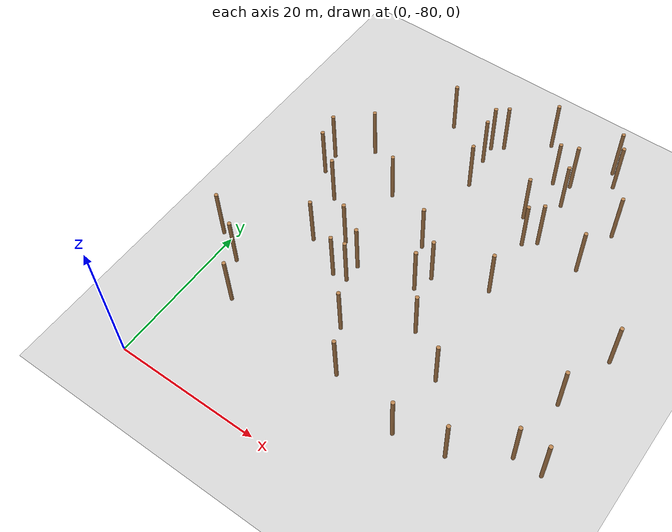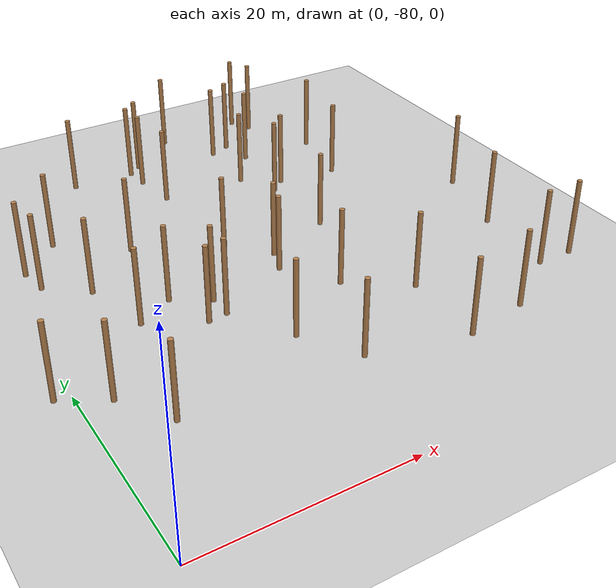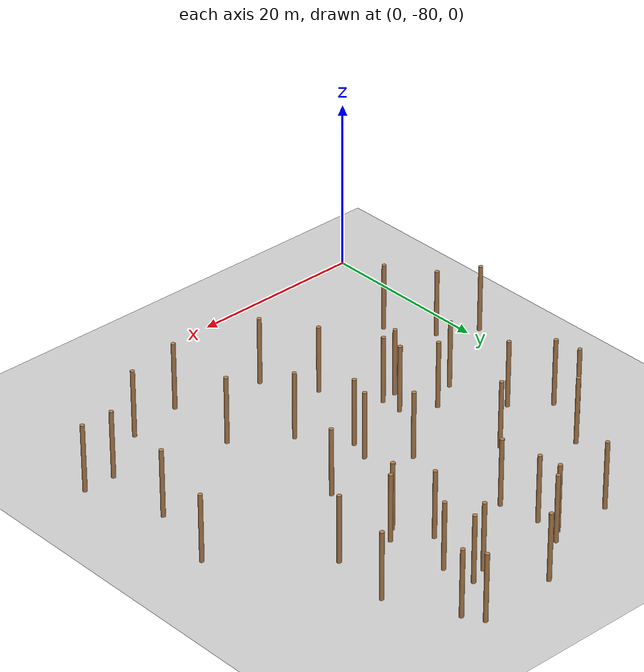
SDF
<sdf version="1.5">
 <world name="padure_tactica">
  <include><uri>model://sun</uri></include>
  <include><uri>model://ground_plane</uri></include>
  <model name="tree_49">
   <static>true</static>
   <pose>12.91 -42.04 4.0 0 0 0</pose>
   <link name="link">
    <collision name="collision">
     <geometry><cylinder><radius>0.25</radius><length>8.0</length></cylinder></geometry>
    </collision>
    <visual name="visual">
     <geometry><cylinder><radius>0.25</radius><length>8.0</length></cylinder></geometry>
     <material>
      <script><uri>file://media/materials/scripts/gazebo.material</uri><name>Gazebo/Wood</name></script>
     </material>
    </visual>
   </link>
  </model>
  <model name="tree_75">
   <static>true</static>
   <pose>39.30 -69.07 4.0 0 0 0</pose>
   <link name="link">
    <collision name="collision">
     <geometry><cylinder><radius>0.25</radius><length>8.0</length></cylinder></geometry>
    </collision>
    <visual name="visual">
     <geometry><cylinder><radius>0.25</radius><length>8.0</length></cylinder></geometry>
     <material>
      <script><uri>file://media/materials/scripts/gazebo.material</uri><name>Gazebo/Wood</name></script>
     </material>
    </visual>
   </link>
  </model>
  <model name="tree_86">
   <static>true</static>
   <pose>38.84 -38.28 4.0 0 0 0</pose>
   <link name="link">
    <collision name="collision">
     <geometry><cylinder><radius>0.25</radius><length>8.0</length></cylinder></geometry>
    </collision>
    <visual name="visual">
     <geometry><cylinder><radius>0.25</radius><length>8.0</length></cylinder></geometry>
     <material>
      <script><uri>file://media/materials/scripts/gazebo.material</uri><name>Gazebo/Wood</name></script>
     </material>
    </visual>
   </link>
  </model>
  <model name="tree_126">
   <static>true</static>
   <pose>31.52 -47.40 4.0 0 0 0</pose>
   <link name="link">
    <collision name="collision">
     <geometry><cylinder><radius>0.25</radius><length>8.0</length></cylinder></geometry>
    </collision>
    <visual name="visual">
     <geometry><cylinder><radius>0.25</radius><length>8.0</length></cylinder></geometry>
     <material>
      <script><uri>file://media/materials/scripts/gazebo.material</uri><name>Gazebo/Wood</name></script>
     </material>
    </visual>
   </link>
  </model>
  <model name="tree_182">
   <static>true</static>
   <pose>49.41 -64.76 4.0 0 0 0</pose>
   <link name="link">
    <collision name="collision">
     <geometry><cylinder><radius>0.25</radius><length>8.0</length></cylinder></geometry>
    </collision>
    <visual name="visual">
     <geometry><cylinder><radius>0.25</radius><length>8.0</length></cylinder></geometry>
     <material>
      <script><uri>file://media/materials/scripts/gazebo.material</uri><name>Gazebo/Wood</name></script>
     </material>
    </visual>
   </link>
  </model>
  <model name="tree_205">
   <static>true</static>
   <pose>14.05 -56.67 4.0 0 0 0</pose>
   <link name="link">
    <collision name="collision">
     <geometry><cylinder><radius>0.25</radius><length>8.0</length></cylinder></geometry>
    </collision>
    <visual name="visual">
     <geometry><cylinder><radius>0.25</radius><length>8.0</length></cylinder></geometry>
     <material>
      <script><uri>file://media/materials/scripts/gazebo.material</uri><name>Gazebo/Wood</name></script>
     </material>
    </visual>
   </link>
  </model>
  <model name="tree_219">
   <static>true</static>
   <pose>6.62 -37.26 4.0 0 0 0</pose>
   <link name="link">
    <collision name="collision">
     <geometry><cylinder><radius>0.25</radius><length>8.0</length></cylinder></geometry>
    </collision>
    <visual name="visual">
     <geometry><cylinder><radius>0.25</radius><length>8.0</length></cylinder></geometry>
     <material>
      <script><uri>file://media/materials/scripts/gazebo.material</uri><name>Gazebo/Wood</name></script>
     </material>
    </visual>
   </link>
  </model>
  <model name="tree_231">
   <static>true</static>
   <pose>36.25 -23.72 4.0 0 0 0</pose>
   <link name="link">
    <collision name="collision">
     <geometry><cylinder><radius>0.25</radius><length>8.0</length></cylinder></geometry>
    </collision>
    <visual name="visual">
     <geometry><cylinder><radius>0.25</radius><length>8.0</length></cylinder></geometry>
     <material>
      <script><uri>file://media/materials/scripts/gazebo.material</uri><name>Gazebo/Wood</name></script>
     </material>
    </visual>
   </link>
  </model>
  <model name="tree_246">
   <static>true</static>
   <pose>31.47 -26.95 4.0 0 0 0</pose>
   <link name="link">
    <collision name="collision">
     <geometry><cylinder><radius>0.25</radius><length>8.0</length></cylinder></geometry>
    </collision>
    <visual name="visual">
     <geometry><cylinder><radius>0.25</radius><length>8.0</length></cylinder></geometry>
     <material>
      <script><uri>file://media/materials/scripts/gazebo.material</uri><name>Gazebo/Wood</name></script>
     </material>
    </visual>
   </link>
  </model>
  <model name="tree_268">
   <static>true</static>
   <pose>15.95 -56.40 4.0 0 0 0</pose>
   <link name="link">
    <collision name="collision">
     <geometry><cylinder><radius>0.25</radius><length>8.0</length></cylinder></geometry>
    </collision>
    <visual name="visual">
     <geometry><cylinder><radius>0.25</radius><length>8.0</length></cylinder></geometry>
     <material>
      <script><uri>file://media/materials/scripts/gazebo.material</uri><name>Gazebo/Wood</name></script>
     </material>
    </visual>
   </link>
  </model>
  <model name="tree_289">
   <static>true</static>
   <pose>5.97 -66.97 4.0 0 0 0</pose>
   <link name="link">
    <collision name="collision">
     <geometry><cylinder><radius>0.25</radius><length>8.0</length></cylinder></geometry>
    </collision>
    <visual name="visual">
     <geometry><cylinder><radius>0.25</radius><length>8.0</length></cylinder></geometry>
     <material>
      <script><uri>file://media/materials/scripts/gazebo.material</uri><name>Gazebo/Wood</name></script>
     </material>
    </visual>
   </link>
  </model>
  <model name="tree_405">
   <static>true</static>
   <pose>20.84 -46.66 4.0 0 0 0</pose>
   <link name="link">
    <collision name="collision">
     <geometry><cylinder><radius>0.25</radius><length>8.0</length></cylinder></geometry>
    </collision>
    <visual name="visual">
     <geometry><cylinder><radius>0.25</radius><length>8.0</length></cylinder></geometry>
     <material>
      <script><uri>file://media/materials/scripts/gazebo.material</uri><name>Gazebo/Wood</name></script>
     </material>
    </visual>
   </link>
  </model>
  <model name="tree_442">
   <static>true</static>
   <pose>15.89 -53.95 4.0 0 0 0</pose>
   <link name="link">
    <collision name="collision">
     <geometry><cylinder><radius>0.25</radius><length>8.0</length></cylinder></geometry>
    </collision>
    <visual name="visual">
     <geometry><cylinder><radius>0.25</radius><length>8.0</length></cylinder></geometry>
     <material>
      <script><uri>file://media/materials/scripts/gazebo.material</uri><name>Gazebo/Wood</name></script>
     </material>
    </visual>
   </link>
  </model>
  <model name="tree_446">
   <static>true</static>
   <pose>33.05 -61.68 4.0 0 0 0</pose>
   <link name="link">
    <collision name="collision">
     <geometry><cylinder><radius>0.25</radius><length>8.0</length></cylinder></geometry>
    </collision>
    <visual name="visual">
     <geometry><cylinder><radius>0.25</radius><length>8.0</length></cylinder></geometry>
     <material>
      <script><uri>file://media/materials/scripts/gazebo.material</uri><name>Gazebo/Wood</name></script>
     </material>
    </visual>
   </link>
  </model>
  <model name="tree_465">
   <static>true</static>
   <pose>25.82 -22.18 4.0 0 0 0</pose>
   <link name="link">
    <collision name="collision">
     <geometry><cylinder><radius>0.25</radius><length>8.0</length></cylinder></geometry>
    </collision>
    <visual name="visual">
     <geometry><cylinder><radius>0.25</radius><length>8.0</length></cylinder></geometry>
     <material>
      <script><uri>file://media/materials/scripts/gazebo.material</uri><name>Gazebo/Wood</name></script>
     </material>
    </visual>
   </link>
  </model>
  <model name="tree_472">
   <static>true</static>
   <pose>24.56 -50.01 4.0 0 0 0</pose>
   <link name="link">
    <collision name="collision">
     <geometry><cylinder><radius>0.25</radius><length>8.0</length></cylinder></geometry>
    </collision>
    <visual name="visual">
     <geometry><cylinder><radius>0.25</radius><length>8.0</length></cylinder></geometry>
     <material>
      <script><uri>file://media/materials/scripts/gazebo.material</uri><name>Gazebo/Wood</name></script>
     </material>
    </visual>
   </link>
  </model>
  <model name="tree_477">
   <static>true</static>
   <pose>3.11 -43.94 4.0 0 0 0</pose>
   <link name="link">
    <collision name="collision">
     <geometry><cylinder><radius>0.25</radius><length>8.0</length></cylinder></geometry>
    </collision>
    <visual name="visual">
     <geometry><cylinder><radius>0.25</radius><length>8.0</length></cylinder></geometry>
     <material>
      <script><uri>file://media/materials/scripts/gazebo.material</uri><name>Gazebo/Wood</name></script>
     </material>
    </visual>
   </link>
  </model>
  <model name="tree_531">
   <static>true</static>
   <pose>23.03 -67.89 4.0 0 0 0</pose>
   <link name="link">
    <collision name="collision">
     <geometry><cylinder><radius>0.25</radius><length>8.0</length></cylinder></geometry>
    </collision>
    <visual name="visual">
     <geometry><cylinder><radius>0.25</radius><length>8.0</length></cylinder></geometry>
     <material>
      <script><uri>file://media/materials/scripts/gazebo.material</uri><name>Gazebo/Wood</name></script>
     </material>
    </visual>
   </link>
  </model>
  <model name="tree_533">
   <static>true</static>
   <pose>12.91 -27.09 4.0 0 0 0</pose>
   <link name="link">
    <collision name="collision">
     <geometry><cylinder><radius>0.25</radius><length>8.0</length></cylinder></geometry>
    </collision>
    <visual name="visual">
     <geometry><cylinder><radius>0.25</radius><length>8.0</length></cylinder></geometry>
     <material>
      <script><uri>file://media/materials/scripts/gazebo.material</uri><name>Gazebo/Wood</name></script>
     </material>
    </visual>
   </link>
  </model>
  <model name="tree_544">
   <static>true</static>
   <pose>31.13 -38.86 4.0 0 0 0</pose>
   <link name="link">
    <collision name="collision">
     <geometry><cylinder><radius>0.25</radius><length>8.0</length></cylinder></geometry>
    </collision>
    <visual name="visual">
     <geometry><cylinder><radius>0.25</radius><length>8.0</length></cylinder></geometry>
     <material>
      <script><uri>file://media/materials/scripts/gazebo.material</uri><name>Gazebo/Wood</name></script>
     </material>
    </visual>
   </link>
  </model>
  <model name="tree_566">
   <static>true</static>
   <pose>46.46 -56.02 4.0 0 0 0</pose>
   <link name="link">
    <collision name="collision">
     <geometry><cylinder><radius>0.25</radius><length>8.0</length></cylinder></geometry>
    </collision>
    <visual name="visual">
     <geometry><cylinder><radius>0.25</radius><length>8.0</length></cylinder></geometry>
     <material>
      <script><uri>file://media/materials/scripts/gazebo.material</uri><name>Gazebo/Wood</name></script>
     </material>
    </visual>
   </link>
  </model>
  <model name="tree_578">
   <static>true</static>
   <pose>29.33 -27.80 4.0 0 0 0</pose>
   <link name="link">
    <collision name="collision">
     <geometry><cylinder><radius>0.25</radius><length>8.0</length></cylinder></geometry>
    </collision>
    <visual name="visual">
     <geometry><cylinder><radius>0.25</radius><length>8.0</length></cylinder></geometry>
     <material>
      <script><uri>file://media/materials/scripts/gazebo.material</uri><name>Gazebo/Wood</name></script>
     </material>
    </visual>
   </link>
  </model>
  <model name="tree_607">
   <static>true</static>
   <pose>20.28 -34.55 4.0 0 0 0</pose>
   <link name="link">
    <collision name="collision">
     <geometry><cylinder><radius>0.25</radius><length>8.0</length></cylinder></geometry>
    </collision>
    <visual name="visual">
     <geometry><cylinder><radius>0.25</radius><length>8.0</length></cylinder></geometry>
     <material>
      <script><uri>file://media/materials/scripts/gazebo.material</uri><name>Gazebo/Wood</name></script>
     </material>
    </visual>
   </link>
  </model>
  <model name="tree_694">
   <static>true</static>
   <pose>2.59 -40.99 4.0 0 0 0</pose>
   <link name="link">
    <collision name="collision">
     <geometry><cylinder><radius>0.25</radius><length>8.0</length></cylinder></geometry>
    </collision>
    <visual name="visual">
     <geometry><cylinder><radius>0.25</radius><length>8.0</length></cylinder></geometry>
     <material>
      <script><uri>file://media/materials/scripts/gazebo.material</uri><name>Gazebo/Wood</name></script>
     </material>
    </visual>
   </link>
  </model>
  <model name="tree_702">
   <static>true</static>
   <pose>39.98 -30.98 4.0 0 0 0</pose>
   <link name="link">
    <collision name="collision">
     <geometry><cylinder><radius>0.25</radius><length>8.0</length></cylinder></geometry>
    </collision>
    <visual name="visual">
     <geometry><cylinder><radius>0.25</radius><length>8.0</length></cylinder></geometry>
     <material>
      <script><uri>file://media/materials/scripts/gazebo.material</uri><name>Gazebo/Wood</name></script>
     </material>
    </visual>
   </link>
  </model>
  <model name="tree_742">
   <static>true</static>
   <pose>32.68 -37.51 4.0 0 0 0</pose>
   <link name="link">
    <collision name="collision">
     <geometry><cylinder><radius>0.25</radius><length>8.0</length></cylinder></geometry>
    </collision>
    <visual name="visual">
     <geometry><cylinder><radius>0.25</radius><length>8.0</length></cylinder></geometry>
     <material>
      <script><uri>file://media/materials/scripts/gazebo.material</uri><name>Gazebo/Wood</name></script>
     </material>
    </visual>
   </link>
  </model>
  <model name="tree_768">
   <static>true</static>
   <pose>-1.45 -59.73 4.0 0 0 0</pose>
   <link name="link">
    <collision name="collision">
     <geometry><cylinder><radius>0.25</radius><length>8.0</length></cylinder></geometry>
    </collision>
    <visual name="visual">
     <geometry><cylinder><radius>0.25</radius><length>8.0</length></cylinder></geometry>
     <material>
      <script><uri>file://media/materials/scripts/gazebo.material</uri><name>Gazebo/Wood</name></script>
     </material>
    </visual>
   </link>
  </model>
  <model name="tree_782">
   <static>true</static>
   <pose>23.68 -52.53 4.0 0 0 0</pose>
   <link name="link">
    <collision name="collision">
     <geometry><cylinder><radius>0.25</radius><length>8.0</length></cylinder></geometry>
    </collision>
    <visual name="visual">
     <geometry><cylinder><radius>0.25</radius><length>8.0</length></cylinder></geometry>
     <material>
      <script><uri>file://media/materials/scripts/gazebo.material</uri><name>Gazebo/Wood</name></script>
     </material>
    </visual>
   </link>
  </model>
  <model name="tree_783">
   <static>true</static>
   <pose>45.69 -64.74 4.0 0 0 0</pose>
   <link name="link">
    <collision name="collision">
     <geometry><cylinder><radius>0.25</radius><length>8.0</length></cylinder></geometry>
    </collision>
    <visual name="visual">
     <geometry><cylinder><radius>0.25</radius><length>8.0</length></cylinder></geometry>
     <material>
      <script><uri>file://media/materials/scripts/gazebo.material</uri><name>Gazebo/Wood</name></script>
     </material>
    </visual>
   </link>
  </model>
  <model name="tree_796">
   <static>true</static>
   <pose>12.40 -51.82 4.0 0 0 0</pose>
   <link name="link">
    <collision name="collision">
     <geometry><cylinder><radius>0.25</radius><length>8.0</length></cylinder></geometry>
    </collision>
    <visual name="visual">
     <geometry><cylinder><radius>0.25</radius><length>8.0</length></cylinder></geometry>
     <material>
      <script><uri>file://media/materials/scripts/gazebo.material</uri><name>Gazebo/Wood</name></script>
     </material>
    </visual>
   </link>
  </model>
  <model name="tree_815">
   <static>true</static>
   <pose>32.10 -30.50 4.0 0 0 0</pose>
   <link name="link">
    <collision name="collision">
     <geometry><cylinder><radius>0.25</radius><length>8.0</length></cylinder></geometry>
    </collision>
    <visual name="visual">
     <geometry><cylinder><radius>0.25</radius><length>8.0</length></cylinder></geometry>
     <material>
      <script><uri>file://media/materials/scripts/gazebo.material</uri><name>Gazebo/Wood</name></script>
     </material>
    </visual>
   </link>
  </model>
  <model name="tree_820">
   <static>true</static>
   <pose>35.06 -21.62 4.0 0 0 0</pose>
   <link name="link">
    <collision name="collision">
     <geometry><cylinder><radius>0.25</radius><length>8.0</length></cylinder></geometry>
    </collision>
    <visual name="visual">
     <geometry><cylinder><radius>0.25</radius><length>8.0</length></cylinder></geometry>
     <material>
      <script><uri>file://media/materials/scripts/gazebo.material</uri><name>Gazebo/Wood</name></script>
     </material>
    </visual>
   </link>
  </model>
  <model name="tree_855">
   <static>true</static>
   <pose>20.67 -26.32 4.0 0 0 0</pose>
   <link name="link">
    <collision name="collision">
     <geometry><cylinder><radius>0.25</radius><length>8.0</length></cylinder></geometry>
    </collision>
    <visual name="visual">
     <geometry><cylinder><radius>0.25</radius><length>8.0</length></cylinder></geometry>
     <material>
      <script><uri>file://media/materials/scripts/gazebo.material</uri><name>Gazebo/Wood</name></script>
     </material>
    </visual>
   </link>
  </model>
  <model name="tree_881">
   <static>true</static>
   <pose>48.67 -47.54 4.0 0 0 0</pose>
   <link name="link">
    <collision name="collision">
     <geometry><cylinder><radius>0.25</radius><length>8.0</length></cylinder></geometry>
    </collision>
    <visual name="visual">
     <geometry><cylinder><radius>0.25</radius><length>8.0</length></cylinder></geometry>
     <material>
      <script><uri>file://media/materials/scripts/gazebo.material</uri><name>Gazebo/Wood</name></script>
     </material>
    </visual>
   </link>
  </model>
  <model name="tree_1021">
   <static>true</static>
   <pose>19.55 -29.96 4.0 0 0 0</pose>
   <link name="link">
    <collision name="collision">
     <geometry><cylinder><radius>0.25</radius><length>8.0</length></cylinder></geometry>
    </collision>
    <visual name="visual">
     <geometry><cylinder><radius>0.25</radius><length>8.0</length></cylinder></geometry>
     <material>
      <script><uri>file://media/materials/scripts/gazebo.material</uri><name>Gazebo/Wood</name></script>
     </material>
    </visual>
   </link>
  </model>
  <model name="tree_1038">
   <static>true</static>
   <pose>6.92 -47.00 4.0 0 0 0</pose>
   <link name="link">
    <collision name="collision">
     <geometry><cylinder><radius>0.25</radius><length>8.0</length></cylinder></geometry>
    </collision>
    <visual name="visual">
     <geometry><cylinder><radius>0.25</radius><length>8.0</length></cylinder></geometry>
     <material>
      <script><uri>file://media/materials/scripts/gazebo.material</uri><name>Gazebo/Wood</name></script>
     </material>
    </visual>
   </link>
  </model>
  <model name="tree_1058">
   <static>true</static>
   <pose>29.04 -34.99 4.0 0 0 0</pose>
   <link name="link">
    <collision name="collision">
     <geometry><cylinder><radius>0.25</radius><length>8.0</length></cylinder></geometry>
    </collision>
    <visual name="visual">
     <geometry><cylinder><radius>0.25</radius><length>8.0</length></cylinder></geometry>
     <material>
      <script><uri>file://media/materials/scripts/gazebo.material</uri><name>Gazebo/Wood</name></script>
     </material>
    </visual>
   </link>
  </model>
  <model name="tree_1099">
   <static>true</static>
   <pose>8.73 -53.86 4.0 0 0 0</pose>
   <link name="link">
    <collision name="collision">
     <geometry><cylinder><radius>0.25</radius><length>8.0</length></cylinder></geometry>
    </collision>
    <visual name="visual">
     <geometry><cylinder><radius>0.25</radius><length>8.0</length></cylinder></geometry>
     <material>
      <script><uri>file://media/materials/scripts/gazebo.material</uri><name>Gazebo/Wood</name></script>
     </material>
    </visual>
   </link>
  </model>
  <model name="tree_1104">
   <static>true</static>
   <pose>19.26 -27.44 4.0 0 0 0</pose>
   <link name="link">
    <collision name="collision">
     <geometry><cylinder><radius>0.25</radius><length>8.0</length></cylinder></geometry>
    </collision>
    <visual name="visual">
     <geometry><cylinder><radius>0.25</radius><length>8.0</length></cylinder></geometry>
     <material>
      <script><uri>file://media/materials/scripts/gazebo.material</uri><name>Gazebo/Wood</name></script>
     </material>
    </visual>
   </link>
  </model>
  <model name="tree_1115">
   <static>true</static>
   <pose>2.71 -62.15 4.0 0 0 0</pose>
   <link name="link">
    <collision name="collision">
     <geometry><cylinder><radius>0.25</radius><length>8.0</length></cylinder></geometry>
    </collision>
    <visual name="visual">
     <geometry><cylinder><radius>0.25</radius><length>8.0</length></cylinder></geometry>
     <material>
      <script><uri>file://media/materials/scripts/gazebo.material</uri><name>Gazebo/Wood</name></script>
     </material>
    </visual>
   </link>
  </model>
  <model name="tree_1133">
   <static>true</static>
   <pose>27.35 -57.59 4.0 0 0 0</pose>
   <link name="link">
    <collision name="collision">
     <geometry><cylinder><radius>0.25</radius><length>8.0</length></cylinder></geometry>
    </collision>
    <visual name="visual">
     <geometry><cylinder><radius>0.25</radius><length>8.0</length></cylinder></geometry>
     <material>
      <script><uri>file://media/materials/scripts/gazebo.material</uri><name>Gazebo/Wood</name></script>
     </material>
    </visual>
   </link>
  </model>
  <model name="tree_1169">
   <static>true</static>
   <pose>32.82 -70.25 4.0 0 0 0</pose>
   <link name="link">
    <collision name="collision">
     <geometry><cylinder><radius>0.25</radius><length>8.0</length></cylinder></geometry>
    </collision>
    <visual name="visual">
     <geometry><cylinder><radius>0.25</radius><length>8.0</length></cylinder></geometry>
     <material>
      <script><uri>file://media/materials/scripts/gazebo.material</uri><name>Gazebo/Wood</name></script>
     </material>
    </visual>
   </link>
  </model>
  <model name="tree_1193">
   <static>true</static>
   <pose>19.57 -62.44 4.0 0 0 0</pose>
   <link name="link">
    <collision name="collision">
     <geometry><cylinder><radius>0.25</radius><length>8.0</length></cylinder></geometry>
    </collision>
    <visual name="visual">
     <geometry><cylinder><radius>0.25</radius><length>8.0</length></cylinder></geometry>
     <material>
      <script><uri>file://media/materials/scripts/gazebo.material</uri><name>Gazebo/Wood</name></script>
     </material>
    </visual>
   </link>
  </model>
 </world>
</sdf>
